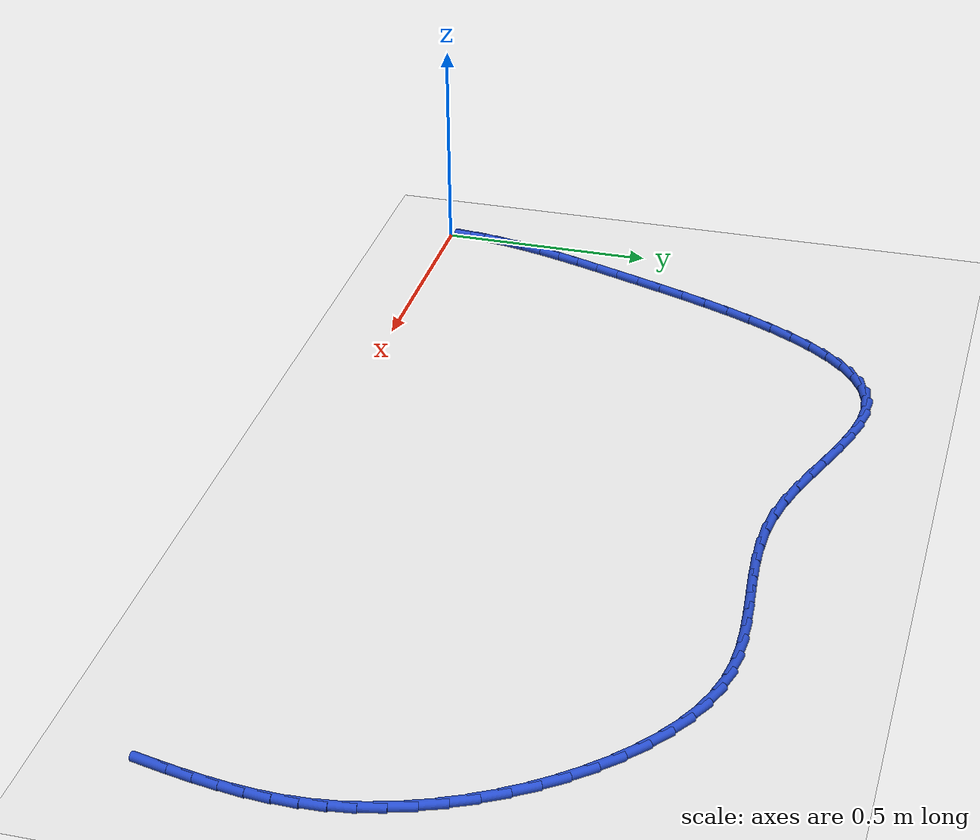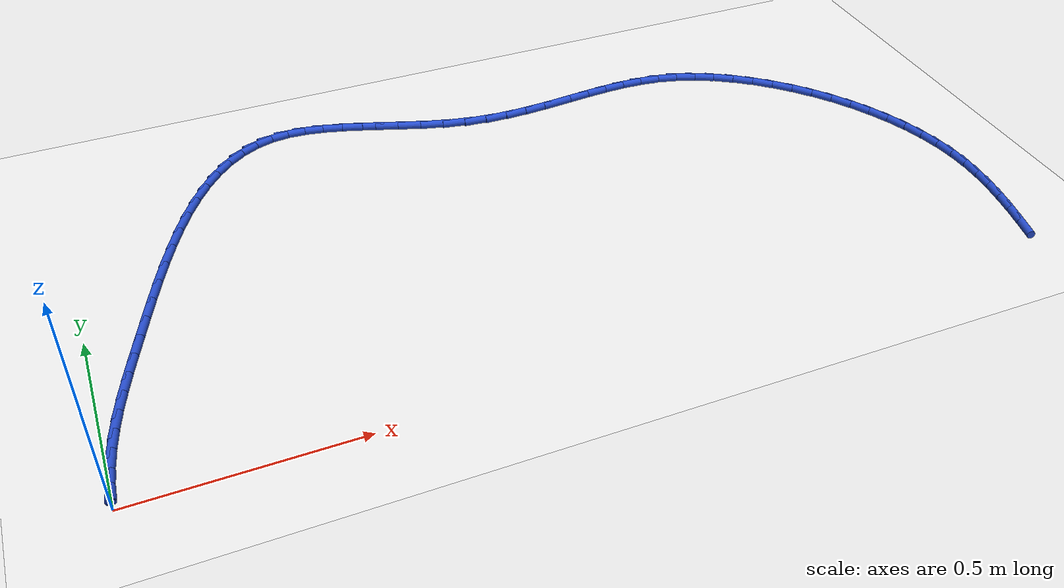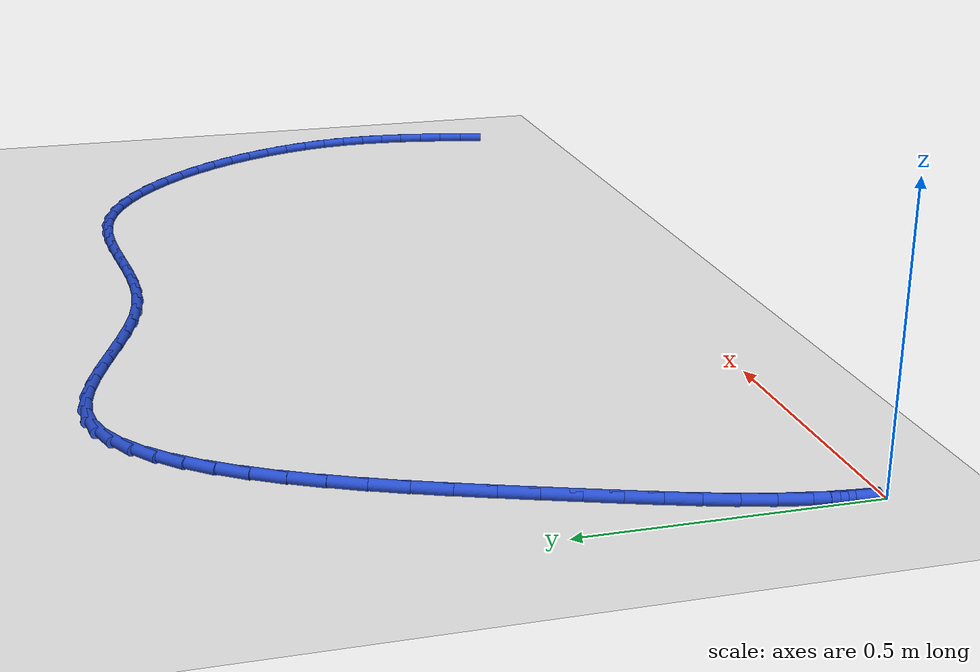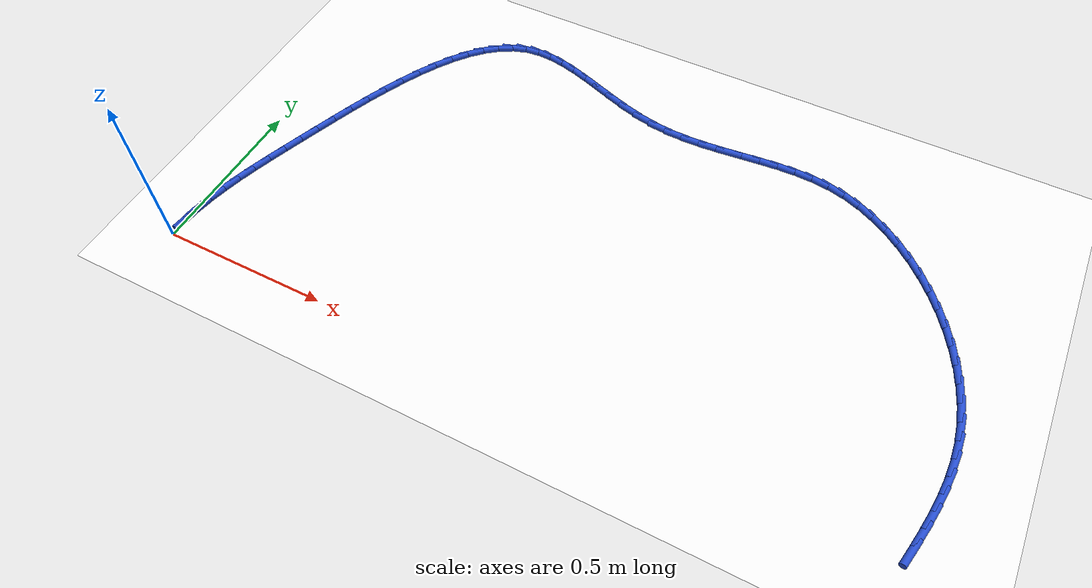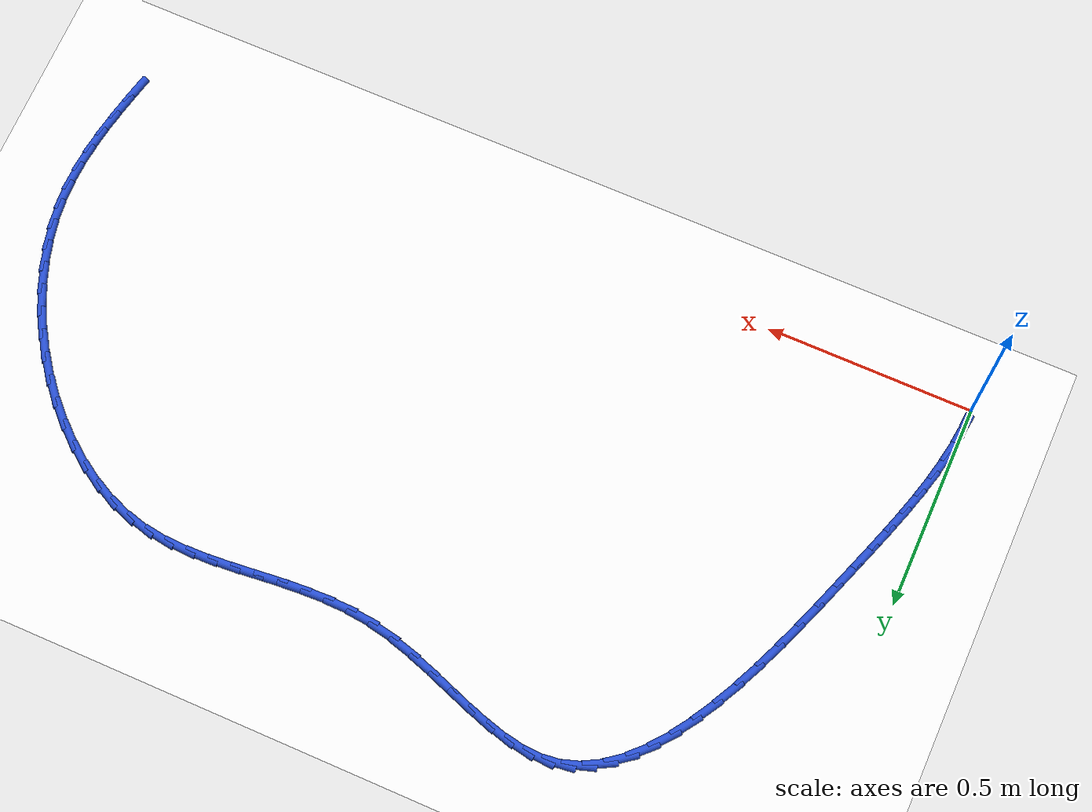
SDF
<sdf version="1.6">
 <world name="default">
  <model name="ground_plane">
   <static>1</static>
   <link name="link">
    <collision name="collision">
     <geometry><plane><normal>0 0 1</normal><size>100 100</size></plane></geometry>
     <surface><friction><ode><mu>100</mu><mu2>50</mu2></ode></friction></surface>
    </collision>
    <visual name="visual">
     <cast_shadows>0</cast_shadows>
     <geometry><plane><normal>0 0 1</normal><size>100 100</size></plane></geometry>
     <material>
      <script><uri>file://media/materials/scripts/gazebo.material</uri><name>Gazebo/WhiteGlow</name></script>
     </material>
    </visual>
   </link>
  </model>
  <model name="line">
   <link name="link_1">
    <pose>0.0033267041857109095 0.053181342811590517 0.01 0 1.57 1.445418709129475</pose>
    <collision name="collision">
     <geometry><cylinder><radius>0.01</radius><length>0.08</length></cylinder></geometry>
    </collision>
    <visual name="visual">
     <material>
      <script><name>Gazebo/Blue</name><uri>file://media/materials/scripts/gazebo.material</uri></script>
     </material>
     <geometry><cylinder><radius>0.01</radius><length>0.08</length></cylinder></geometry>
    </visual>
   </link>
   <link name="link_2">
    <pose>0.009922046169130937 0.10550924023692021 0.01 0 1.57 1.388942217186132</pose>
    <collision name="collision">
     <geometry><cylinder><radius>0.01</radius><length>0.08</length></cylinder></geometry>
    </collision>
    <visual name="visual">
     <material>
      <script><name>Gazebo/Blue</name><uri>file://media/materials/scripts/gazebo.material</uri></script>
     </material>
     <geometry><cylinder><radius>0.01</radius><length>0.08</length></cylinder></geometry>
    </visual>
   </link>
   <link name="link_3">
    <pose>0.019458455001543303 0.15736976963227017 0.01 0 1.57 1.3403177889997424</pose>
    <collision name="collision">
     <geometry><cylinder><radius>0.01</radius><length>0.08</length></cylinder></geometry>
    </collision>
    <visual name="visual">
     <material>
      <script><name>Gazebo/Blue</name><uri>file://media/materials/scripts/gazebo.material</uri></script>
     </material>
     <geometry><cylinder><radius>0.01</radius><length>0.08</length></cylinder></geometry>
    </visual>
   </link>
   <link name="link_4">
    <pose>0.03160835973423118 0.20914900835392142 0.01 0 1.57 1.3004191480663636</pose>
    <collision name="collision">
     <geometry><cylinder><radius>0.01</radius><length>0.08</length></cylinder></geometry>
    </collision>
    <visual name="visual">
     <material>
      <script><name>Gazebo/Blue</name><uri>file://media/materials/scripts/gazebo.material</uri></script>
     </material>
     <geometry><cylinder><radius>0.01</radius><length>0.08</length></cylinder></geometry>
    </visual>
   </link>
   <link name="link_5">
    <pose>0.04604418941847781 0.2612330337581551 0.01 0 1.57 1.2696035557084053</pose>
    <collision name="collision">
     <geometry><cylinder><radius>0.01</radius><length>0.08</length></cylinder></geometry>
    </collision>
    <visual name="visual">
     <material>
      <script><name>Gazebo/Blue</name><uri>file://media/materials/scripts/gazebo.material</uri></script>
     </material>
     <geometry><cylinder><radius>0.01</radius><length>0.08</length></cylinder></geometry>
    </visual>
   </link>
   <link name="link_6">
    <pose>0.0624383731055664 0.3140079232012525 0.01 0 1.57 1.247803603447397</pose>
    <collision name="collision">
     <geometry><cylinder><radius>0.01</radius><length>0.08</length></cylinder></geometry>
    </collision>
    <visual name="visual">
     <material>
      <script><name>Gazebo/Blue</name><uri>file://media/materials/scripts/gazebo.material</uri></script>
     </material>
     <geometry><cylinder><radius>0.01</radius><length>0.08</length></cylinder></geometry>
    </visual>
   </link>
   <link name="link_7">
    <pose>0.08046333984678015 0.36785975403949445 0.01 0 1.57 1.2346372718309582</pose>
    <collision name="collision">
     <geometry><cylinder><radius>0.01</radius><length>0.08</length></cylinder></geometry>
    </collision>
    <visual name="visual">
     <material>
      <script><name>Gazebo/Blue</name><uri>file://media/materials/scripts/gazebo.material</uri></script>
     </material>
     <geometry><cylinder><radius>0.01</radius><length>0.08</length></cylinder></geometry>
    </visual>
   </link>
   <link name="link_8">
    <pose>0.09979151869340228 0.42317460362916226 0.01 0 1.57 1.2294651567920911</pose>
    <collision name="collision">
     <geometry><cylinder><radius>0.01</radius><length>0.08</length></cylinder></geometry>
    </collision>
    <visual name="visual">
     <material>
      <script><name>Gazebo/Blue</name><uri>file://media/materials/scripts/gazebo.material</uri></script>
     </material>
     <geometry><cylinder><radius>0.01</radius><length>0.08</length></cylinder></geometry>
    </visual>
   </link>
   <link name="link_9">
    <pose>0.12009682817023558 0.48033476798194763 0.01 0 1.57 1.2272965254919443</pose>
    <collision name="collision">
     <geometry><cylinder><radius>0.01</radius><length>0.08</length></cylinder></geometry>
    </collision>
    <visual name="visual">
     <material>
      <script><name>Gazebo/Blue</name><uri>file://media/materials/scripts/gazebo.material</uri></script>
     </material>
     <geometry><cylinder><radius>0.01</radius><length>0.08</length></cylinder></geometry>
    </visual>
   </link>
   <link name="link_10">
    <pose>0.141202780432505 0.5393427679355757 0.01 0 1.57 1.2201274291410018</pose>
    <collision name="collision">
     <geometry><cylinder><radius>0.01</radius><length>0.08</length></cylinder></geometry>
    </collision>
    <visual name="visual">
     <material>
      <script><name>Gazebo/Blue</name><uri>file://media/materials/scripts/gazebo.material</uri></script>
     </material>
     <geometry><cylinder><radius>0.01</radius><length>0.08</length></cylinder></geometry>
    </visual>
   </link>
   <link name="link_11">
    <pose>0.16320824955814922 0.5995020596563193 0.01 0 1.57 1.2072348963132928</pose>
    <collision name="collision">
     <geometry><cylinder><radius>0.01</radius><length>0.08</length></cylinder></geometry>
    </collision>
    <visual name="visual">
     <material>
      <script><name>Gazebo/Blue</name><uri>file://media/materials/scripts/gazebo.material</uri></script>
     </material>
     <geometry><cylinder><radius>0.01</radius><length>0.08</length></cylinder></geometry>
    </visual>
   </link>
   <link name="link_12">
    <pose>0.18624172765213157 0.6600409076640288 0.01 0 1.57 1.1884093068402266</pose>
    <collision name="collision">
     <geometry><cylinder><radius>0.01</radius><length>0.08</length></cylinder></geometry>
    </collision>
    <visual name="visual">
     <material>
      <script><name>Gazebo/Blue</name><uri>file://media/materials/scripts/gazebo.material</uri></script>
     </material>
     <geometry><cylinder><radius>0.01</radius><length>0.08</length></cylinder></geometry>
    </visual>
   </link>
   <link name="link_13">
    <pose>0.2104317068194154 0.7201875764785544 0.01 0 1.57 1.1630912796080632</pose>
    <collision name="collision">
     <geometry><cylinder><radius>0.01</radius><length>0.08</length></cylinder></geometry>
    </collision>
    <visual name="visual">
     <material>
      <script><name>Gazebo/Blue</name><uri>file://media/materials/scripts/gazebo.material</uri></script>
     </material>
     <geometry><cylinder><radius>0.01</radius><length>0.08</length></cylinder></geometry>
    </visual>
   </link>
   <link name="link_14">
    <pose>0.235906679164964 0.7791703306197462 0.01 0 1.57 1.1303402385987853</pose>
    <collision name="collision">
     <geometry><cylinder><radius>0.01</radius><length>0.08</length></cylinder></geometry>
    </collision>
    <visual name="visual">
     <material>
      <script><name>Gazebo/Blue</name><uri>file://media/materials/scripts/gazebo.material</uri></script>
     </material>
     <geometry><cylinder><radius>0.01</radius><length>0.08</length></cylinder></geometry>
    </visual>
   </link>
   <link name="link_15">
    <pose>0.2627951367937406 0.8362174346074541 0.01 0 1.57 1.0887629694745173</pose>
    <collision name="collision">
     <geometry><cylinder><radius>0.01</radius><length>0.08</length></cylinder></geometry>
    </collision>
    <visual name="visual">
     <material>
      <script><name>Gazebo/Blue</name><uri>file://media/materials/scripts/gazebo.material</uri></script>
     </material>
     <geometry><cylinder><radius>0.01</radius><length>0.08</length></cylinder></geometry>
    </visual>
   </link>
   <link name="link_16">
    <pose>0.29122557181070874 0.8905571529615289 0.01 0 1.57 1.0364047129241518</pose>
    <collision name="collision">
     <geometry><cylinder><radius>0.01</radius><length>0.08</length></cylinder></geometry>
    </collision>
    <visual name="visual">
     <material>
      <script><name>Gazebo/Blue</name><uri>file://media/materials/scripts/gazebo.material</uri></script>
     </material>
     <geometry><cylinder><radius>0.01</radius><length>0.08</length></cylinder></geometry>
    </visual>
   </link>
   <link name="link_17">
    <pose>0.3213264763208315 0.9414177502018203 0.01 0 1.57 0.9706147361396109</pose>
    <collision name="collision">
     <geometry><cylinder><radius>0.01</radius><length>0.08</length></cylinder></geometry>
    </collision>
    <visual name="visual">
     <material>
      <script><name>Gazebo/Blue</name><uri>file://media/materials/scripts/gazebo.material</uri></script>
     </material>
     <geometry><cylinder><radius>0.01</radius><length>0.08</length></cylinder></geometry>
    </visual>
   </link>
   <link name="link_18">
    <pose>0.3532263424290723 0.9880274908481789 0.01 0 1.57 0.8879330717113463</pose>
    <collision name="collision">
     <geometry><cylinder><radius>0.01</radius><length>0.08</length></cylinder></geometry>
    </collision>
    <visual name="visual">
     <material>
      <script><name>Gazebo/Blue</name><uri>file://media/materials/scripts/gazebo.material</uri></script>
     </material>
     <geometry><cylinder><radius>0.01</radius><length>0.08</length></cylinder></geometry>
    </visual>
   </link>
   <link name="link_19">
    <pose>0.3870536622403945 1.0296146394204544 0.01 0 1.57 0.7841363122339298</pose>
    <collision name="collision">
     <geometry><cylinder><radius>0.01</radius><length>0.08</length></cylinder></geometry>
    </collision>
    <visual name="visual">
     <material>
      <script><name>Gazebo/Blue</name><uri>file://media/materials/scripts/gazebo.material</uri></script>
     </material>
     <geometry><cylinder><radius>0.01</radius><length>0.08</length></cylinder></geometry>
    </visual>
   </link>
   <link name="link_20">
    <pose>0.42293692785976134 1.0654074604384973 0.01 0 1.57 0.654769267308233</pose>
    <collision name="collision">
     <geometry><cylinder><radius>0.01</radius><length>0.08</length></cylinder></geometry>
    </collision>
    <visual name="visual">
     <material>
      <script><name>Gazebo/Blue</name><uri>file://media/materials/scripts/gazebo.material</uri></script>
     </material>
     <geometry><cylinder><radius>0.01</radius><length>0.08</length></cylinder></geometry>
    </visual>
   </link>
   <link name="link_21">
    <pose>0.46100463139213615 1.0946342184221576 0.01 0 1.57 0.49673127510841913</pose>
    <collision name="collision">
     <geometry><cylinder><radius>0.01</radius><length>0.08</length></cylinder></geometry>
    </collision>
    <visual name="visual">
     <material>
      <script><name>Gazebo/Blue</name><uri>file://media/materials/scripts/gazebo.material</uri></script>
     </material>
     <geometry><cylinder><radius>0.01</radius><length>0.08</length></cylinder></geometry>
    </visual>
   </link>
   <link name="link_22">
    <pose>0.5013852649424823 1.1165231778912856 0.01 0 1.57 0.3113198239132697</pose>
    <collision name="collision">
     <geometry><cylinder><radius>0.01</radius><length>0.08</length></cylinder></geometry>
    </collision>
    <visual name="visual">
     <material>
      <script><name>Gazebo/Blue</name><uri>file://media/materials/scripts/gazebo.material</uri></script>
     </material>
     <geometry><cylinder><radius>0.01</radius><length>0.08</length></cylinder></geometry>
    </visual>
   </link>
   <link name="link_23">
    <pose>0.544207320615763 1.130302603365732 0.01 0 1.57 0.10928270416025336</pose>
    <collision name="collision">
     <geometry><cylinder><radius>0.01</radius><length>0.08</length></cylinder></geometry>
    </collision>
    <visual name="visual">
     <material>
      <script><name>Gazebo/Blue</name><uri>file://media/materials/scripts/gazebo.material</uri></script>
     </material>
     <geometry><cylinder><radius>0.01</radius><length>0.08</length></cylinder></geometry>
    </visual>
   </link>
   <link name="link_24">
    <pose>0.5895851152856764 1.1352814475711404 0.01 0 1.57 -0.06759013633200203</pose>
    <collision name="collision">
     <geometry><cylinder><radius>0.01</radius><length>0.08</length></cylinder></geometry>
    </collision>
    <visual name="visual">
     <material>
      <script><name>Gazebo/Blue</name><uri>file://media/materials/scripts/gazebo.material</uri></script>
     </material>
     <geometry><cylinder><radius>0.01</radius><length>0.08</length></cylinder></geometry>
    </visual>
   </link>
   <link name="link_25">
    <pose>0.6374088982091847 1.1320441002001227 0.01 0 1.57 -0.19460517917740996</pose>
    <collision name="collision">
     <geometry><cylinder><radius>0.01</radius><length>0.08</length></cylinder></geometry>
    </collision>
    <visual name="visual">
     <material>
      <script><name>Gazebo/Blue</name><uri>file://media/materials/scripts/gazebo.material</uri></script>
     </material>
     <geometry><cylinder><radius>0.01</radius><length>0.08</length></cylinder></geometry>
    </visual>
   </link>
   <link name="link_26">
    <pose>0.6873900995071044 1.1221928246566453 0.01 0 1.57 -0.2786867780458782</pose>
    <collision name="collision">
     <geometry><cylinder><radius>0.01</radius><length>0.08</length></cylinder></geometry>
    </collision>
    <visual name="visual">
     <material>
      <script><name>Gazebo/Blue</name><uri>file://media/materials/scripts/gazebo.material</uri></script>
     </material>
     <geometry><cylinder><radius>0.01</radius><length>0.08</length></cylinder></geometry>
    </visual>
   </link>
   <link name="link_27">
    <pose>0.7392351683592114 1.1073582368412347 0.01 0 1.57 -0.328175645972469</pose>
    <collision name="collision">
     <geometry><cylinder><radius>0.01</radius><length>0.08</length></cylinder></geometry>
    </collision>
    <visual name="visual">
     <material>
      <script><name>Gazebo/Blue</name><uri>file://media/materials/scripts/gazebo.material</uri></script>
     </material>
     <geometry><cylinder><radius>0.01</radius><length>0.08</length></cylinder></geometry>
    </visual>
   </link>
   <link name="link_28">
    <pose>0.7926505539452829 1.0891709526544178 0.01 0 1.57 -0.3491150840815747</pose>
    <collision name="collision">
     <geometry><cylinder><radius>0.01</radius><length>0.08</length></cylinder></geometry>
    </collision>
    <visual name="visual">
     <material>
      <script><name>Gazebo/Blue</name><uri>file://media/materials/scripts/gazebo.material</uri></script>
     </material>
     <geometry><cylinder><radius>0.01</radius><length>0.08</length></cylinder></geometry>
    </visual>
   </link>
   <link name="link_29">
    <pose>0.8473427054450946 1.0692615879967207 0.01 0 1.57 -0.34488278071411027</pose>
    <collision name="collision">
     <geometry><cylinder><radius>0.01</radius><length>0.08</length></cylinder></geometry>
    </collision>
    <visual name="visual">
     <material>
      <script><name>Gazebo/Blue</name><uri>file://media/materials/scripts/gazebo.material</uri></script>
     </material>
     <geometry><cylinder><radius>0.01</radius><length>0.08</length></cylinder></geometry>
    </visual>
   </link>
   <link name="link_30">
    <pose>0.9030180720384235 1.0492607587686702 0.01 0 1.57 -0.3165255323826815</pose>
    <collision name="collision">
     <geometry><cylinder><radius>0.01</radius><length>0.08</length></cylinder></geometry>
    </collision>
    <visual name="visual">
     <material>
      <script><name>Gazebo/Blue</name><uri>file://media/materials/scripts/gazebo.material</uri></script>
     </material>
     <geometry><cylinder><radius>0.01</radius><length>0.08</length></cylinder></geometry>
    </visual>
   </link>
   <link name="link_31">
    <pose>0.9593831029050458 1.030799080870792 0.01 0 1.57 -0.2631600473430439</pose>
    <collision name="collision">
     <geometry><cylinder><radius>0.01</radius><length>0.08</length></cylinder></geometry>
    </collision>
    <visual name="visual">
     <material>
      <script><name>Gazebo/Blue</name><uri>file://media/materials/scripts/gazebo.material</uri></script>
     </material>
     <geometry><cylinder><radius>0.01</radius><length>0.08</length></cylinder></geometry>
    </visual>
   </link>
   <link name="link_32">
    <pose>1.0161442472247377 1.0155071702036134 0.01 0 1.57 -0.18265631122918846</pose>
    <collision name="collision">
     <geometry><cylinder><radius>0.01</radius><length>0.08</length></cylinder></geometry>
    </collision>
    <visual name="visual">
     <material>
      <script><name>Gazebo/Blue</name><uri>file://media/materials/scripts/gazebo.material</uri></script>
     </material>
     <geometry><cylinder><radius>0.01</radius><length>0.08</length></cylinder></geometry>
    </visual>
   </link>
   <link name="link_33">
    <pose>1.0730088852112436 1.0050034110886081 0.01 0 1.57 -0.08910875263708001</pose>
    <collision name="collision">
     <geometry><cylinder><radius>0.01</radius><length>0.08</length></cylinder></geometry>
    </collision>
    <visual name="visual">
     <material>
      <script><name>Gazebo/Blue</name><uri>file://media/materials/scripts/gazebo.material</uri></script>
     </material>
     <geometry><cylinder><radius>0.01</radius><length>0.08</length></cylinder></geometry>
    </visual>
   </link>
   <link name="link_34">
    <pose>1.1297584658654907 0.9999330995850032 0.01 0 1.57 -0.011607012859327429</pose>
    <collision name="collision">
     <geometry><cylinder><radius>0.01</radius><length>0.08</length></cylinder></geometry>
    </collision>
    <visual name="visual">
     <material>
      <script><name>Gazebo/Blue</name><uri>file://media/materials/scripts/gazebo.material</uri></script>
     </material>
     <geometry><cylinder><radius>0.01</radius><length>0.08</length></cylinder></geometry>
    </visual>
   </link>
   <link name="link_35">
    <pose>1.18630115460957 0.999276778395587 0.01 0 1.57 0.04574096640737334</pose>
    <collision name="collision">
     <geometry><cylinder><radius>0.01</radius><length>0.08</length></cylinder></geometry>
    </collision>
    <visual name="visual">
     <material>
      <script><name>Gazebo/Blue</name><uri>file://media/materials/scripts/gazebo.material</uri></script>
     </material>
     <geometry><cylinder><radius>0.01</radius><length>0.08</length></cylinder></geometry>
    </visual>
   </link>
   <link name="link_36">
    <pose>1.2425575387682093 1.001851795872222 0.01 0 1.57 0.08253971275291383</pose>
    <collision name="collision">
     <geometry><cylinder><radius>0.01</radius><length>0.08</length></cylinder></geometry>
    </collision>
    <visual name="visual">
     <material>
      <script><name>Gazebo/Blue</name><uri>file://media/materials/scripts/gazebo.material</uri></script>
     </material>
     <geometry><cylinder><radius>0.01</radius><length>0.08</length></cylinder></geometry>
    </visual>
   </link>
   <link name="link_37">
    <pose>1.298448205666134 1.006475500366769 0.01 0 1.57 0.09868973842554847</pose>
    <collision name="collision">
     <geometry><cylinder><radius>0.01</radius><length>0.08</length></cylinder></geometry>
    </collision>
    <visual name="visual">
     <material>
      <script><name>Gazebo/Blue</name><uri>file://media/materials/scripts/gazebo.material</uri></script>
     </material>
     <geometry><cylinder><radius>0.01</radius><length>0.08</length></cylinder></geometry>
    </visual>
   </link>
   <link name="link_38">
    <pose>1.353893742628071 1.0119652402310892 0.01 0 1.57 0.09391500761634602</pose>
    <collision name="collision">
     <geometry><cylinder><radius>0.01</radius><length>0.08</length></cylinder></geometry>
    </collision>
    <visual name="visual">
     <material>
      <script><name>Gazebo/Blue</name><uri>file://media/materials/scripts/gazebo.material</uri></script>
     </material>
     <geometry><cylinder><radius>0.01</radius><length>0.08</length></cylinder></geometry>
    </visual>
   </link>
   <link name="link_39">
    <pose>1.4088147369787476 1.017138363817045 0.01 0 1.57 0.06753439927680942</pose>
    <collision name="collision">
     <geometry><cylinder><radius>0.01</radius><length>0.08</length></cylinder></geometry>
    </collision>
    <visual name="visual">
     <material>
      <script><name>Gazebo/Blue</name><uri>file://media/materials/scripts/gazebo.material</uri></script>
     </material>
     <geometry><cylinder><radius>0.01</radius><length>0.08</length></cylinder></geometry>
    </visual>
   </link>
   <link name="link_40">
    <pose>1.463131776042889 1.0208122194764975 0.01 0 1.57 0.018492543763515577</pose>
    <collision name="collision">
     <geometry><cylinder><radius>0.01</radius><length>0.08</length></cylinder></geometry>
    </collision>
    <visual name="visual">
     <material>
      <script><name>Gazebo/Blue</name><uri>file://media/materials/scripts/gazebo.material</uri></script>
     </material>
     <geometry><cylinder><radius>0.01</radius><length>0.08</length></cylinder></geometry>
    </visual>
   </link>
   <link name="link_41">
    <pose>1.5167654471452214 1.021804155561308 0.01 0 1.57 -0.05427964920398243</pose>
    <collision name="collision">
     <geometry><cylinder><radius>0.01</radius><length>0.08</length></cylinder></geometry>
    </collision>
    <visual name="visual">
     <material>
      <script><name>Gazebo/Blue</name><uri>file://media/materials/scripts/gazebo.material</uri></script>
     </material>
     <geometry><cylinder><radius>0.01</radius><length>0.08</length></cylinder></geometry>
    </visual>
   </link>
   <link name="link_42">
    <pose>1.5696363376104732 1.0189315204233385 0.01 0 1.57 -0.15106132063294841</pose>
    <collision name="collision">
     <geometry><cylinder><radius>0.01</radius><length>0.08</length></cylinder></geometry>
    </collision>
    <visual name="visual">
     <material>
      <script><name>Gazebo/Blue</name><uri>file://media/materials/scripts/gazebo.material</uri></script>
     </material>
     <geometry><cylinder><radius>0.01</radius><length>0.08</length></cylinder></geometry>
    </visual>
   </link>
   <link name="link_43">
    <pose>1.621665034763369 1.0110116624144503 0.01 0 1.57 -0.268304281249868</pose>
    <collision name="collision">
     <geometry><cylinder><radius>0.01</radius><length>0.08</length></cylinder></geometry>
    </collision>
    <visual name="visual">
     <material>
      <script><name>Gazebo/Blue</name><uri>file://media/materials/scripts/gazebo.material</uri></script>
     </material>
     <geometry><cylinder><radius>0.01</radius><length>0.08</length></cylinder></geometry>
    </visual>
   </link>
   <link name="link_44">
    <pose>1.6727590834749093 0.9969642024930927 0.01 0 1.57 -0.3843170842326538</pose>
    <collision name="collision">
     <geometry><cylinder><radius>0.01</radius><length>0.08</length></cylinder></geometry>
    </collision>
    <visual name="visual">
     <material>
      <script><name>Gazebo/Blue</name><uri>file://media/materials/scripts/gazebo.material</uri></script>
     </material>
     <geometry><cylinder><radius>0.01</radius><length>0.08</length></cylinder></geometry>
    </visual>
   </link>
   <link name="link_45">
    <pose>1.722690625234767 0.9767705293678293 0.01 0 1.57 -0.4880847426893828</pose>
    <collision name="collision">
     <geometry><cylinder><radius>0.01</radius><length>0.08</length></cylinder></geometry>
    </collision>
    <visual name="visual">
     <material>
      <script><name>Gazebo/Blue</name><uri>file://media/materials/scripts/gazebo.material</uri></script>
     </material>
     <geometry><cylinder><radius>0.01</radius><length>0.08</length></cylinder></geometry>
    </visual>
   </link>
   <link name="link_46">
    <pose>1.7711515744971154 0.9510411333113443 0.01 0 1.57 -0.5809336276956655</pose>
    <collision name="collision">
     <geometry><cylinder><radius>0.01</radius><length>0.08</length></cylinder></geometry>
    </collision>
    <visual name="visual">
     <material>
      <script><name>Gazebo/Blue</name><uri>file://media/materials/scripts/gazebo.material</uri></script>
     </material>
     <geometry><cylinder><radius>0.01</radius><length>0.08</length></cylinder></geometry>
    </visual>
   </link>
   <link name="link_47">
    <pose>1.817832795292688 0.920394741508289 0.01 0 1.57 -0.6646896752793684</pose>
    <collision name="collision">
     <geometry><cylinder><radius>0.01</radius><length>0.08</length></cylinder></geometry>
    </collision>
    <visual name="visual">
     <material>
      <script><name>Gazebo/Blue</name><uri>file://media/materials/scripts/gazebo.material</uri></script>
     </material>
     <geometry><cylinder><radius>0.01</radius><length>0.08</length></cylinder></geometry>
    </visual>
   </link>
   <link name="link_48">
    <pose>1.8624251516522183 0.8854500811433156 0.01 0 1.57 -0.7412519334539861</pose>
    <collision name="collision">
     <geometry><cylinder><radius>0.01</radius><length>0.08</length></cylinder></geometry>
    </collision>
    <visual name="visual">
     <material>
      <script><name>Gazebo/Blue</name><uri>file://media/materials/scripts/gazebo.material</uri></script>
     </material>
     <geometry><cylinder><radius>0.01</radius><length>0.08</length></cylinder></geometry>
    </visual>
   </link>
   <link name="link_49">
    <pose>1.9046195076064418 0.846825879401076 0.01 0 1.57 -0.8125042615389684</pose>
    <collision name="collision">
     <geometry><cylinder><radius>0.01</radius><length>0.08</length></cylinder></geometry>
    </collision>
    <visual name="visual">
     <material>
      <script><name>Gazebo/Blue</name><uri>file://media/materials/scripts/gazebo.material</uri></script>
     </material>
     <geometry><cylinder><radius>0.01</radius><length>0.08</length></cylinder></geometry>
    </visual>
   </link>
   <link name="link_50">
    <pose>1.944109448902813 0.805134901039087 0.01 0 1.57 -0.8808199377896098</pose>
    <collision name="collision">
     <geometry><cylinder><radius>0.01</radius><length>0.08</length></cylinder></geometry>
    </collision>
    <visual name="visual">
     <material>
      <script><name>Gazebo/Blue</name><uri>file://media/materials/scripts/gazebo.material</uri></script>
     </material>
     <geometry><cylinder><radius>0.01</radius><length>0.08</length></cylinder></geometry>
    </visual>
   </link>
   <link name="link_51">
    <pose>1.9806460023096704 0.7608640755658398 0.01 0 1.57 -0.947897556073337</pose>
    <collision name="collision">
     <geometry><cylinder><radius>0.01</radius><length>0.08</length></cylinder></geometry>
    </collision>
    <visual name="visual">
     <material>
      <script><name>Gazebo/Blue</name><uri>file://media/materials/scripts/gazebo.material</uri></script>
     </material>
     <geometry><cylinder><radius>0.01</radius><length>0.08</length></cylinder></geometry>
    </visual>
   </link>
   <link name="link_52">
    <pose>2.014034908054886 0.7143804724716744 0.01 0 1.57 -1.0145753860395745</pose>
    <collision name="collision">
     <geometry><cylinder><radius>0.01</radius><length>0.08</length></cylinder></geometry>
    </collision>
    <visual name="visual">
     <material>
      <script><name>Gazebo/Blue</name><uri>file://media/materials/scripts/gazebo.material</uri></script>
     </material>
     <geometry><cylinder><radius>0.01</radius><length>0.08</length></cylinder></geometry>
    </visual>
   </link>
   <link name="link_53">
    <pose>2.0440840821660236 0.6660463947526728 0.01 0 1.57 -1.081691153075514</pose>
    <collision name="collision">
     <geometry><cylinder><radius>0.01</radius><length>0.08</length></cylinder></geometry>
    </collision>
    <visual name="visual">
     <material>
      <script><name>Gazebo/Blue</name><uri>file://media/materials/scripts/gazebo.material</uri></script>
     </material>
     <geometry><cylinder><radius>0.01</radius><length>0.08</length></cylinder></geometry>
    </visual>
   </link>
   <link name="link_54">
    <pose>2.0706014406706488 0.6162241454049172 0.01 0 1.57 -1.150118588481871</pose>
    <collision name="collision">
     <geometry><cylinder><radius>0.01</radius><length>0.08</length></cylinder></geometry>
    </collision>
    <visual name="visual">
     <material>
      <script><name>Gazebo/Blue</name><uri>file://media/materials/scripts/gazebo.material</uri></script>
     </material>
     <geometry><cylinder><radius>0.01</radius><length>0.08</length></cylinder></geometry>
    </visual>
   </link>
   <link name="link_55">
    <pose>2.0933948995963245 0.5652760274244907 0.01 0 1.57 -1.2207752127054825</pose>
    <collision name="collision">
     <geometry><cylinder><radius>0.01</radius><length>0.08</length></cylinder></geometry>
    </collision>
    <visual name="visual">
     <material>
      <script><name>Gazebo/Blue</name><uri>file://media/materials/scripts/gazebo.material</uri></script>
     </material>
     <geometry><cylinder><radius>0.01</radius><length>0.08</length></cylinder></geometry>
    </visual>
   </link>
   <link name="link_56">
    <pose>2.1122723749706163 0.5135643438074764 0.01 0 1.57 -1.2946269583713406</pose>
    <collision name="collision">
     <geometry><cylinder><radius>0.01</radius><length>0.08</length></cylinder></geometry>
    </collision>
    <visual name="visual">
     <material>
      <script><name>Gazebo/Blue</name><uri>file://media/materials/scripts/gazebo.material</uri></script>
     </material>
     <geometry><cylinder><radius>0.01</radius><length>0.08</length></cylinder></geometry>
    </visual>
   </link>
   <link name="link_57">
    <pose>2.1270417828210877 0.46145139754995623 0.01 0 1.57 -1.3726841179535032</pose>
    <collision name="collision">
     <geometry><cylinder><radius>0.01</radius><length>0.08</length></cylinder></geometry>
    </collision>
    <visual name="visual">
     <material>
      <script><name>Gazebo/Blue</name><uri>file://media/materials/scripts/gazebo.material</uri></script>
     </material>
     <geometry><cylinder><radius>0.01</radius><length>0.08</length></cylinder></geometry>
    </visual>
   </link>
   <link name="link_58">
    <pose>2.1375110391753034 0.40929949164801255 0.01 0 1.57 -1.4555809020930572</pose>
    <collision name="collision">
     <geometry><cylinder><radius>0.01</radius><length>0.08</length></cylinder></geometry>
    </collision>
    <visual name="visual">
     <material>
      <script><name>Gazebo/Blue</name><uri>file://media/materials/scripts/gazebo.material</uri></script>
     </material>
     <geometry><cylinder><radius>0.01</radius><length>0.08</length></cylinder></geometry>
    </visual>
   </link>
   <link name="link_59">
    <pose>2.1435110696206627 0.3574535030336677 0.01 0 1.57 -1.5368665874473666</pose>
    <collision name="collision">
     <geometry><cylinder><radius>0.01</radius><length>0.08</length></cylinder></geometry>
    </collision>
    <visual name="visual">
     <material>
      <script><name>Gazebo/Blue</name><uri>file://media/materials/scripts/gazebo.material</uri></script>
     </material>
     <geometry><cylinder><radius>0.01</radius><length>0.08</length></cylinder></geometry>
    </visual>
   </link>
   <link name="link_60">
    <pose>2.1452586960402606 0.3059660538710112 0.01 0 1.57 1.5324651884164642</pose>
    <collision name="collision">
     <geometry><cylinder><radius>0.01</radius><length>0.08</length></cylinder></geometry>
    </collision>
    <visual name="visual">
     <material>
      <script><name>Gazebo/Blue</name><uri>file://media/materials/scripts/gazebo.material</uri></script>
     </material>
     <geometry><cylinder><radius>0.01</radius><length>0.08</length></cylinder></geometry>
    </visual>
   </link>
   <link name="link_61">
    <pose>2.1432906334198516 0.25464749842593404 0.01 0 1.57 1.4710754001531816</pose>
    <collision name="collision">
     <geometry><cylinder><radius>0.01</radius><length>0.08</length></cylinder></geometry>
    </collision>
    <visual name="visual">
     <material>
      <script><name>Gazebo/Blue</name><uri>file://media/materials/scripts/gazebo.material</uri></script>
     </material>
     <geometry><cylinder><radius>0.01</radius><length>0.08</length></cylinder></geometry>
    </visual>
   </link>
   <link name="link_62">
    <pose>2.1381532598885893 0.20330087267762054 0.01 0 1.57 1.4214407117621588</pose>
    <collision name="collision">
     <geometry><cylinder><radius>0.01</radius><length>0.08</length></cylinder></geometry>
    </collision>
    <visual name="visual">
     <material>
      <script><name>Gazebo/Blue</name><uri>file://media/materials/scripts/gazebo.material</uri></script>
     </material>
     <geometry><cylinder><radius>0.01</radius><length>0.08</length></cylinder></geometry>
    </visual>
   </link>
   <link name="link_63">
    <pose>2.1303929535756247 0.15172921260525588 0.01 0 1.57 1.3838129182096088</pose>
    <collision name="collision">
     <geometry><cylinder><radius>0.01</radius><length>0.08</length></cylinder></geometry>
    </collision>
    <visual name="visual">
     <material>
      <script><name>Gazebo/Blue</name><uri>file://media/materials/scripts/gazebo.material</uri></script>
     </material>
     <geometry><cylinder><radius>0.01</radius><length>0.08</length></cylinder></geometry>
    </visual>
   </link>
   <link name="link_64">
    <pose>2.1205560926101104 0.09973555418802528 0.01 0 1.57 1.358015308711647</pose>
    <collision name="collision">
     <geometry><cylinder><radius>0.01</radius><length>0.08</length></cylinder></geometry>
    </collision>
    <visual name="visual">
     <material>
      <script><name>Gazebo/Blue</name><uri>file://media/materials/scripts/gazebo.material</uri></script>
     </material>
     <geometry><cylinder><radius>0.01</radius><length>0.08</length></cylinder></geometry>
    </visual>
   </link>
   <link name="link_65">
    <pose>2.1091890551211967 0.04712293340511299 0.01 0 1.57 1.343621294932797</pose>
    <collision name="collision">
     <geometry><cylinder><radius>0.01</radius><length>0.08</length></cylinder></geometry>
    </collision>
    <visual name="visual">
     <material>
      <script><name>Gazebo/Blue</name><uri>file://media/materials/scripts/gazebo.material</uri></script>
     </material>
     <geometry><cylinder><radius>0.01</radius><length>0.08</length></cylinder></geometry>
    </visual>
   </link>
   <link name="link_131">
    <pose>0.003394351669676346 0.053039365041117 0.01 0 1.57 1.5068866427791592</pose>
    <collision name="collision">
     <geometry><cylinder><radius>0.01</radius><length>0.08</length></cylinder></geometry>
    </collision>
    <visual name="visual">
     <material>
      <script><name>Gazebo/Blue</name><uri>file://media/materials/scripts/gazebo.material</uri></script>
     </material>
     <geometry><cylinder><radius>0.01</radius><length>0.08</length></cylinder></geometry>
    </visual>
   </link>
  </model>
 </world>
</sdf>
